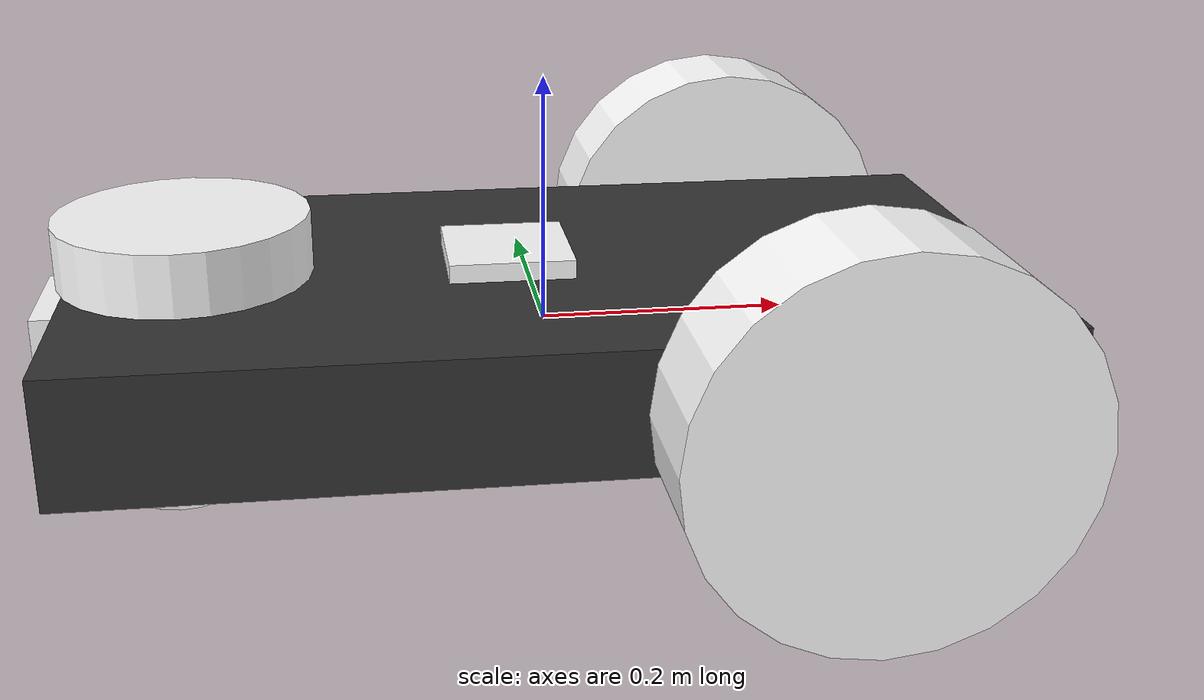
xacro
<?xml version="1.0" ?>

<robot name = "three_wheeled_robot" xmlns:xacro="http://www.ros.org/wiki/xacro">

    <link name="base_link">
        <visual>
        <geometry>
            <box size="0.75 0.4 0.1"/>
        </geometry>
        <material name="gray">
            <color rgba=".2 .2 .2 1" />
        </material>
        </visual>

        <inertial>
            <mass value="1" />
            <inertia ixx="0.01" ixy="0.0" ixz="0" iyy="0.01" iyz="0" izz="0.01" />
        </inertial>

        <collision>
        <geometry>
            <box size="0.75 0.4 0.1"/>
        </geometry>
        </collision>

    </link>

    <link name="wheel_right_link">
        <inertial>
                <mass value="2" />
                <inertia ixx="0.01" ixy="0.0" ixz="0"
                iyy="0.01" iyz="0" izz="0.01" />
        </inertial>

        <visual>
            <geometry>
              <cylinder radius="0.15" length="0.1"/>
            </geometry>
            <material name="white">
            <color rgba="1 1 1 1"/>
            </material>
        </visual>

        <collision>
            <geometry>
              <cylinder radius="0.15" length="0.1"/>
            </geometry>
          <contact_coefficients mu="1" kp="1e+13" kd="1.0"/>
        </collision>
    </link>

    <joint name="wheel_right_joint" type="continuous">
        <origin xyz="0.2 0.25 0.0" rpy="1.57 0.0 0.0"/>
        <parent link="base_link"/>
        <child link="wheel_right_link"/>
        <axis xyz="0.0 0.0 1.0"/>
    </joint>

    <link name="wheel_left_link">
        <inertial>
            <mass value="2" />
            <inertia ixx="0.01" ixy="0.0" ixz="0"
                iyy="0.01" iyz="0" izz="0.01" />
        </inertial>

        <visual>
          <geometry>
              <cylinder radius="0.15" length="0.1"/>
          </geometry>
          <material name="white">
            <color rgba="1 1 1 1"/>
          </material>
        </visual>

        <collision>
          <geometry>
              <cylinder radius="0.15" length="0.1"/>
          </geometry>
          <contact_coefficients mu="1" kp="1e+13" kd="1.0"/>
        </collision>
    </link>

    <joint name="wheel_left_joint" type="continuous">
        <origin xyz="0.2 -0.25 0.0" rpy="1.57 0.0 0.0"/>
        <parent link="base_link"/>
        <child link="wheel_left_link"/>
        <axis xyz="0.0 0.0 1.0"/>
    </joint>

    <link name="caster">
        <inertial>
                <mass value="1" />
                <inertia ixx="0.01" ixy="0.0" ixz="0"
                iyy="0.01" iyz="0" izz="0.01" />
        </inertial>

        <visual>
          <geometry>
            <sphere radius=".08" />
          </geometry>
          <material name="white" />
        </visual>

        <collision>
          <origin/>
          <geometry>
            <sphere radius=".08" />
          </geometry>
        </collision>
    </link>

    <joint name="caster_joint" type="continuous">
        <origin xyz="-0.3 0.0 -0.07" rpy="0.0 0.0 0.0"/>
        <axis xyz="0 0 1" />
        <parent link="base_link"/>
        <child link="caster"/>
    </joint>

    <link name="camera">
        <inertial>
                <mass value="0.1" />
                <inertia ixx="0.01" ixy="0.0" ixz="0"
                iyy="0.01" iyz="0" izz="0.01" />
        </inertial>

        <visual>
          <geometry>
            <box size="0.1 0.1 0.05"/>
          </geometry>
          <material name="white">
            <color rgba="1 1 1 1"/>
          </material>
        </visual>

        <collision>
          <geometry>
              <box size="0.1 0.1 0.05"/>
          </geometry>
        </collision>
    </link>

    <joint name="camera_joint" type="fixed">
        <origin xyz="-0.35 0 0.01" rpy="0 0.0 3.14"/>
        <parent link="base_link"/>
        <child link="camera"/>
        <axis xyz="0.0 0.0 1.0"/>
    </joint>

    <link name="lidar">
        <inertial>
                <mass value="0.5" />
                <inertia ixx="0.01" ixy="0.0" ixz="0"
                iyy="0.01" iyz="0" izz="0.01" />
        </inertial>

        <visual>
          <geometry>
            <cylinder radius="0.1" length="0.05"/>
          </geometry>
          <material name="white">
            <color rgba="1 1 1 1"/>
          </material>
        </visual>

        <collision>
          <geometry>
              <box size="0.1 0.1 0.1"/>
          </geometry>
        </collision>
    </link>

    <joint name="lidar_joint" type="fixed">
        <origin xyz="-0.285 0 0.075" rpy="0 0.0 1.57"/>
        <parent link="base_link"/>
        <child link="lidar"/>
        <axis xyz="0.0 0.0 1.0"/>

    </joint>
    <link name="imu_link">
        <inertial>
          <mass value="0.3"/>
          <inertia ixx="0.01" ixy="0.0" ixz="0"
              iyy="0.01" iyz="0" izz="0.01" />
        </inertial>
        <visual>
          <geometry>
            <box size="0.1 0.1 0.05"/>
          </geometry>
          <material name="white">
            <color rgba="1 1 1 1"/>
          </material>
        </visual>
        <collision>
          <geometry>
              <box size="0.1 0.1 0.05"/>
          </geometry>
        </collision>

    </link>
    <joint name="imu_joint" type="fixed">
      <origin xyz="-0.03 0 0.04"/>
      <parent link="base_link"/>
      <child link="imu_link"/>
      <axis xyz="0.0 0.0 1.0"/>

    </joint>

    <!--http://wiki.ros.org/simulator_gazebo/Tutorials/ListOfMaterials-->
    <gazebo reference="base_link">
        <material>Gazebo/WhiteGlow</material>
    </gazebo>
    <gazebo reference="wheel_left_link">
        <material>Gazebo/SkyBlue</material>
    </gazebo>
    <gazebo reference="wheel_right_link">
        <material>Gazebo/SkyBlue </material>
    </gazebo>
    <gazebo reference="caster">
        <material>Gazebo/Grey</material>
    </gazebo>
    <gazebo reference="lidar">
        <material>Gazebo/Blue</material>
    </gazebo>
    <gazebo reference="camera">
        <material>Gazebo/Red</material>
    </gazebo>

    <!-- differential robot-->
    <gazebo>
        <plugin filename="libgazebo_ros_diff_drive.so" name="gazebo_base_controller">
          <odometry_frame>odom</odometry_frame>
          <commandTopic>cmd_vel</commandTopic>
          <publish_odom>true</publish_odom>
          <publish_odom_tf>true</publish_odom_tf>
          <update_rate>15.0</update_rate>

          <left_joint>wheel_left_joint</left_joint>
          <right_joint>wheel_right_joint</right_joint>

          <wheel_separation>0.5</wheel_separation>
          <wheel_diameter>0.3</wheel_diameter>
          <max_wheel_acceleration>0.7</max_wheel_acceleration>
          <max_wheel_torque>8</max_wheel_torque>
          <robotBaseFrame>base_link</robotBaseFrame>
        </plugin>
    </gazebo>

    <!-- camera plugin-->
    <gazebo reference="camera">
      <sensor type="camera" name="camera1">
        <visualize>true</visualize>
        <update_rate>30.0</update_rate>
        <camera name="head">
          <horizontal_fov>1.3962634</horizontal_fov>
          <image>
            <width>800</width>
            <height>800</height>
            <format>R8G8B8</format>
          </image>
          <clip>
            <near>0.02</near>
            <far>300</far>
          </clip>
        </camera>
        <plugin name="camera_controller" filename="libgazebo_ros_camera.so">
          <alwaysOn>true</alwaysOn>
          <updateRate>60.0</updateRate>
          <cameraName>/camera1</cameraName>
          <imageTopicName>image_raw</imageTopicName>
          <cameraInfoTopicName>info_camera</cameraInfoTopicName>
          <frameName>camera</frameName>
          <hackBaseline>0.07</hackBaseline>
        </plugin>
      </sensor>
    </gazebo>

    <!--lidar plugin-->
    <gazebo reference="lidar">
      <sensor name="lidar" type="ray">
       <visualize>true</visualize>
        <update_rate>12.0</update_rate>
        <plugin filename="libgazebo_ros_ray_sensor.so" name="gazebo_lidar">
        <output_type>sensor_msgs/LaserScan</output_type>
        <frame_name>lidar</frame_name>
        </plugin>
        <ray>
          <scan>
            <horizontal>
              <samples>360</samples>
              <resolution>1</resolution>
              <min_angle>0.00</min_angle>
              <max_angle>3.14</max_angle>
            </horizontal>
          </scan>
          <range>
            <min>0.120</min>
            <max>3.5</max>
            <resolution>0.015</resolution>
          </range>
        </ray>
      </sensor>
    </gazebo>
    <gazebo reference="imu_link">
    <gravity>true</gravity>
    <sensor name="imu_sensor" type="imu">
      <always_on>true</always_on>
      <update_rate>100</update_rate>
      <visualize>true</visualize>
      <topic>imu</topic>
      <plugin filename="libgazebo_ros_imu_sensor.so" name="imu_plugin">
        <topicName>imu</topicName>
        <bodyName>imu_link</bodyName>
        <updateRateHZ>10.0</updateRateHZ>
        <gaussianNoise>0.0</gaussianNoise>
        <xyzOffset>0 0 0</xyzOffset>
        <rpyOffset>0 0 0</rpyOffset>
        <frameName>imu_link</frameName>
        <initialOrientationAsReference>false</initialOrientationAsReference>
      </plugin>
      <pose>0 0 0 0 0 0</pose>
    </sensor>
  </gazebo>

</robot>
